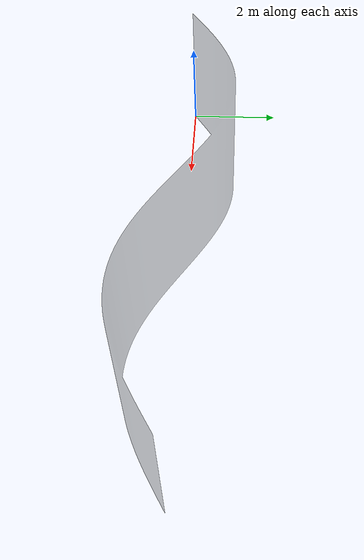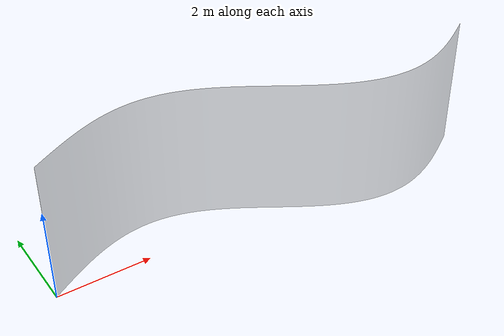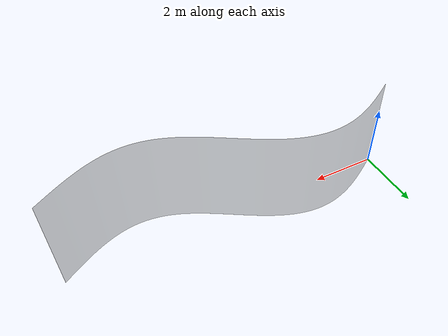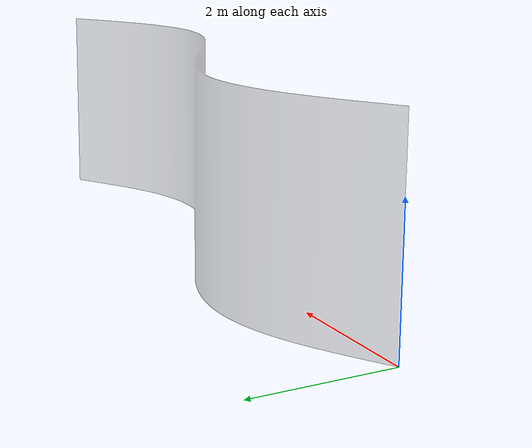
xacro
<?xml version="1.0"?>
<robot xmlns:xacro="http://www.ros.org/wiki/xacro" name="s_wall">

  <!-- Properties -->
  <xacro:property name="mesh_scale" value="1.001 1.001 1.001"/> <!-- mm → m -->
  <xacro:property name="mesh_path" value="package://ss_workshop/worlds/s_shaped_wall/meshes/s_shaped_wall.stl"/>

  <!-- Base link with STL -->
  <link name="s_wall">
    <visual>
      <origin xyz="0 0 0" rpy="0 0 0"/>
      <geometry>
        <mesh filename="${mesh_path}" scale="${mesh_scale}"/>
      </geometry>
      <material name="grayTransparent">
        <color rgba="0.6 0.6 0.6 0.4"/>
      </material>
    </visual>

    <collision>
      <origin xyz="0 0 0" rpy="0 0 0"/>
      <geometry>
        <mesh filename="${mesh_path}" scale="${mesh_scale}"/>
      </geometry>
    </collision>

    <inertial>
      <mass value="100.0"/>
      <origin xyz="0 0 0" rpy="0 0 0"/>
      <inertia ixx="104.2" iyy="1083.3" izz="850.0"
               ixy="0.0" ixz="0.0" iyz="0.0"/>
    </inertial>
  </link>
  <gazebo reference="s_wall">
    <static>true</static>
    <material>Gazebo/BlueTransparent</material>
  </gazebo>

</robot>
